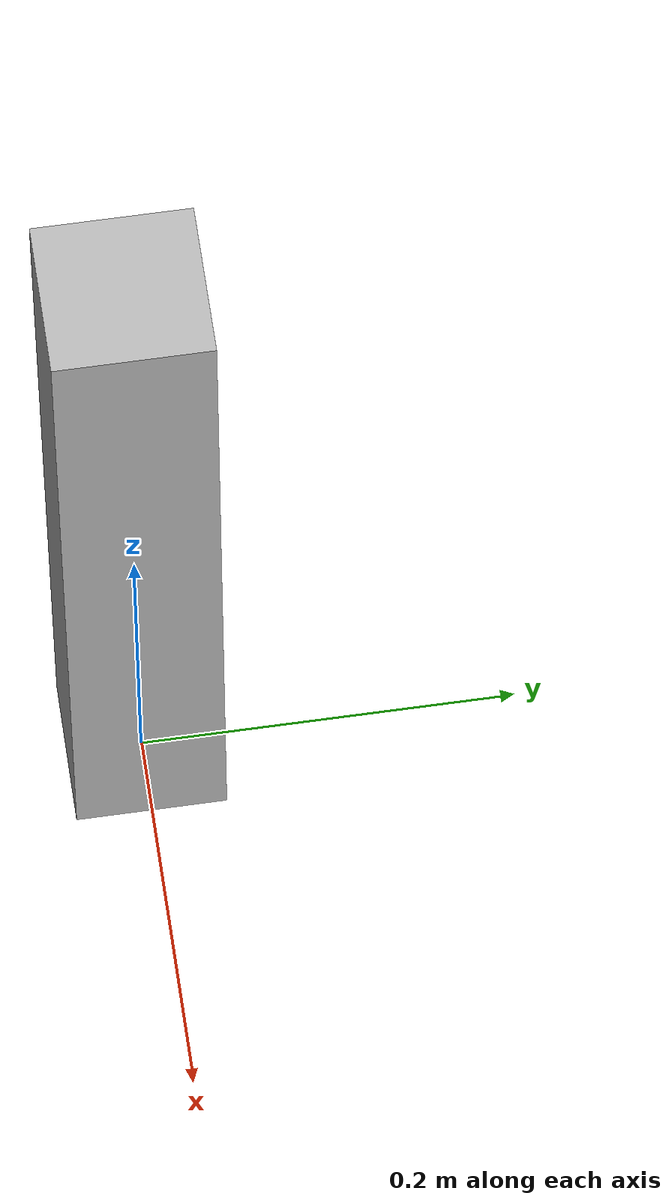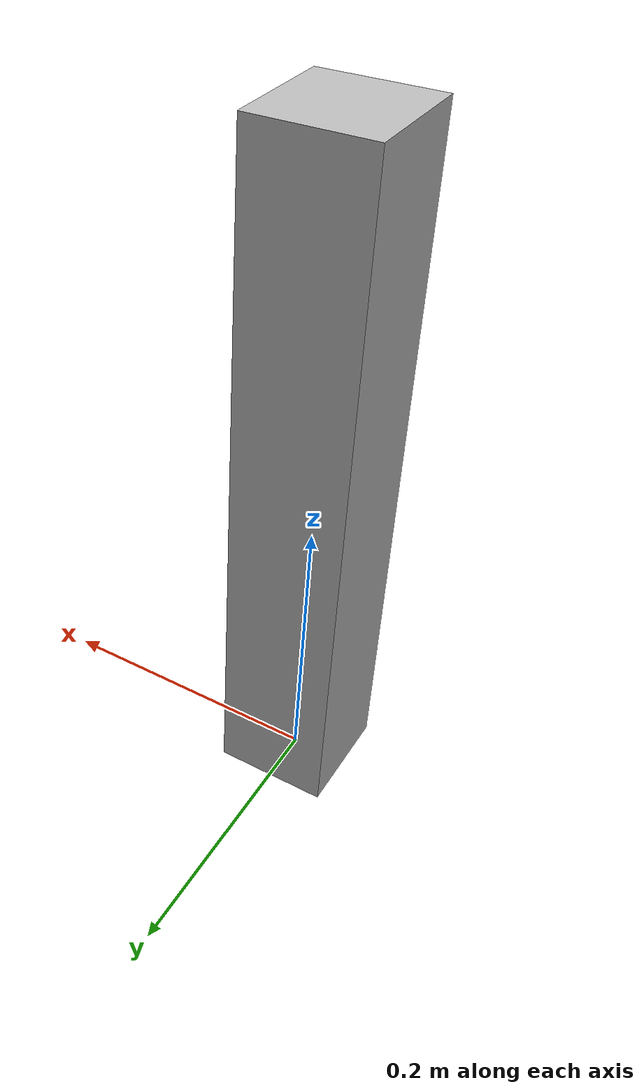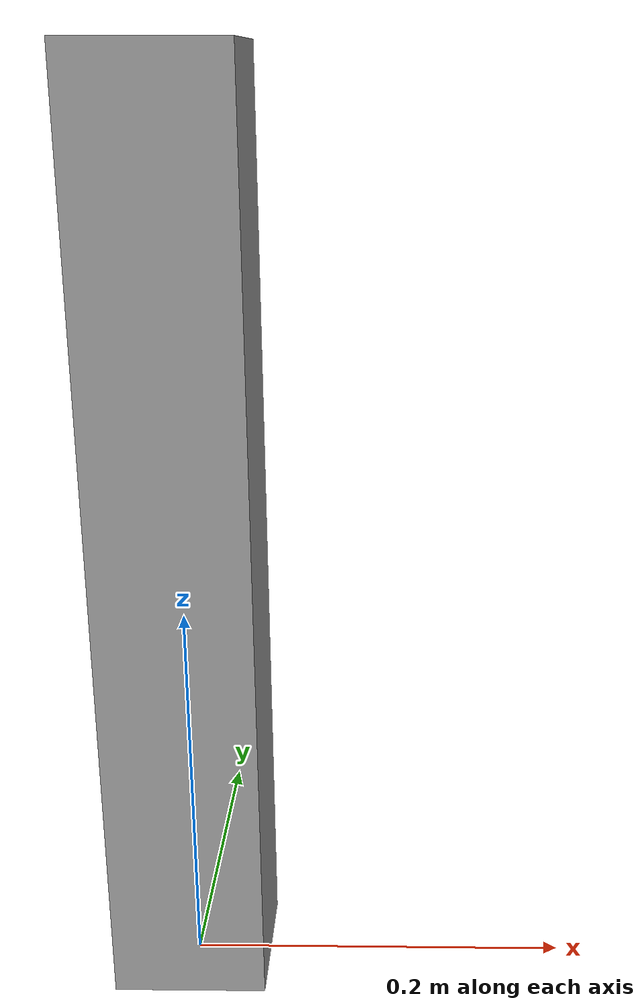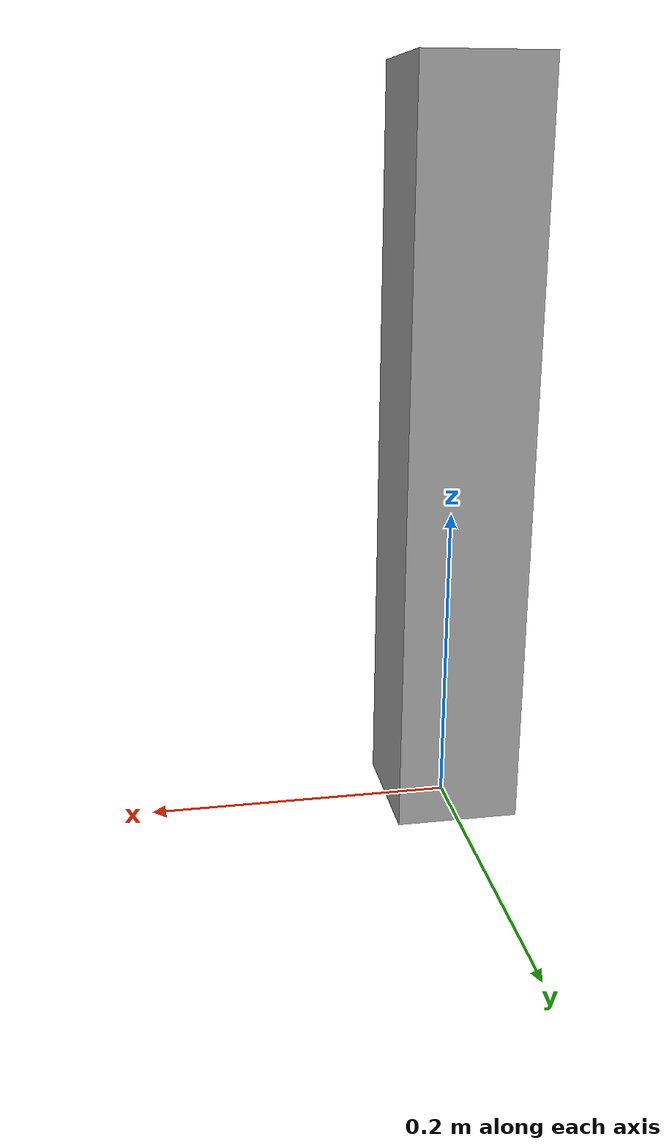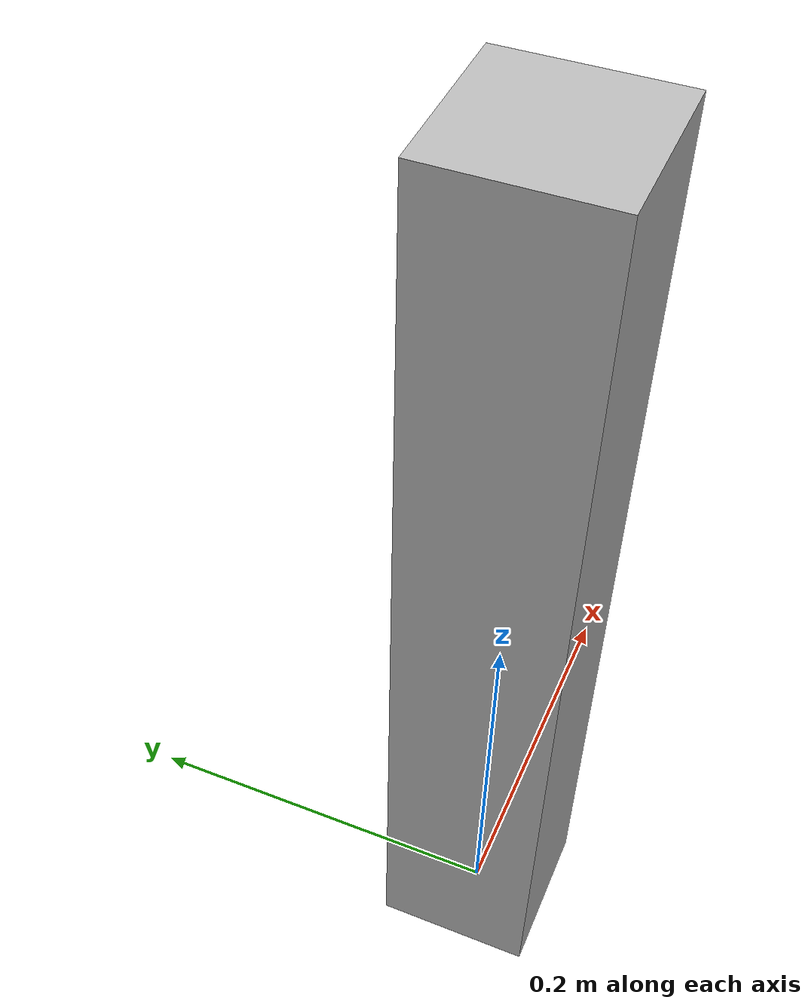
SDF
<sdf version="1.6">

    <model name="box_for_fpv">
        <static>true</static>
        <pose>0 0 0.24 0 0 0</pose>
        <link name="link">
          <collision name="collision">
            <geometry>
              <box>
                <size>0.08 0.08 0.48</size>
              </box>
            </geometry>
          </collision>
          <visual name="visual">
            <geometry>
              <box>
                <size>0.08 0.08 0.48</size>
              </box>
            </geometry>
            <material>
              <script>Gazebo/WoodPallet</script>
            </material>
          </visual>
        </link>
  </model>
</sdf>
